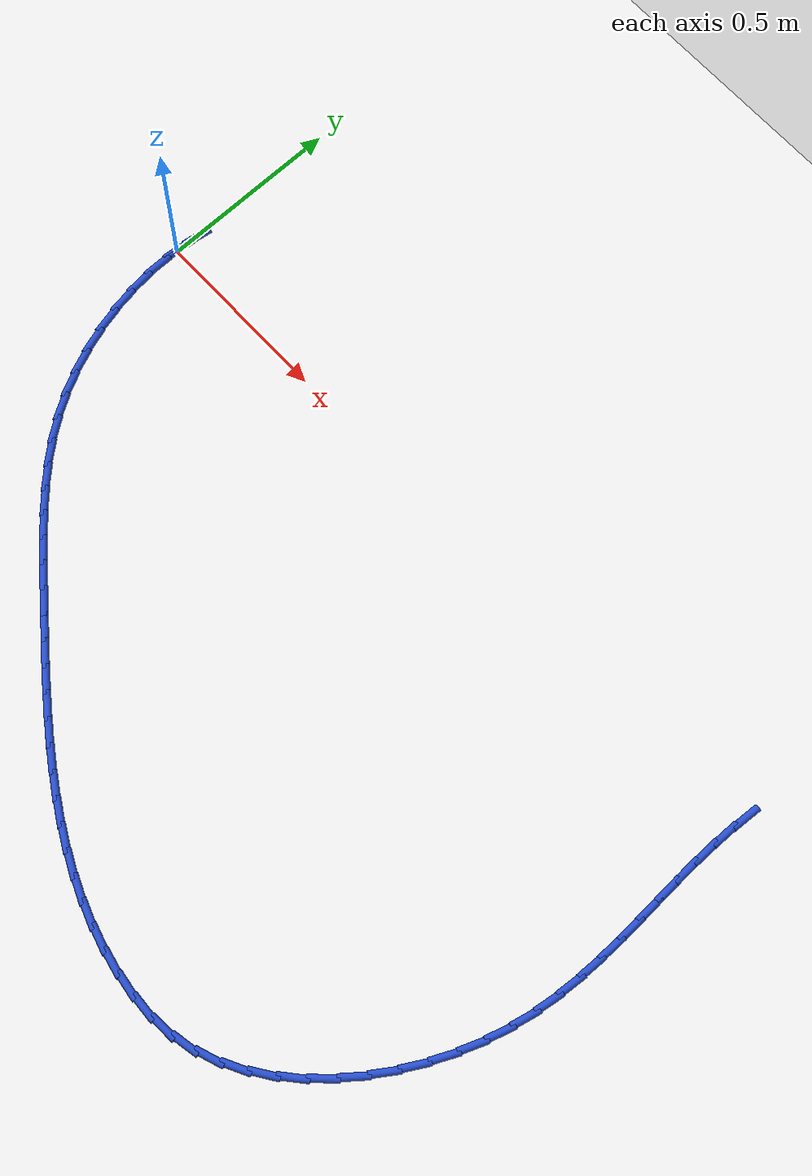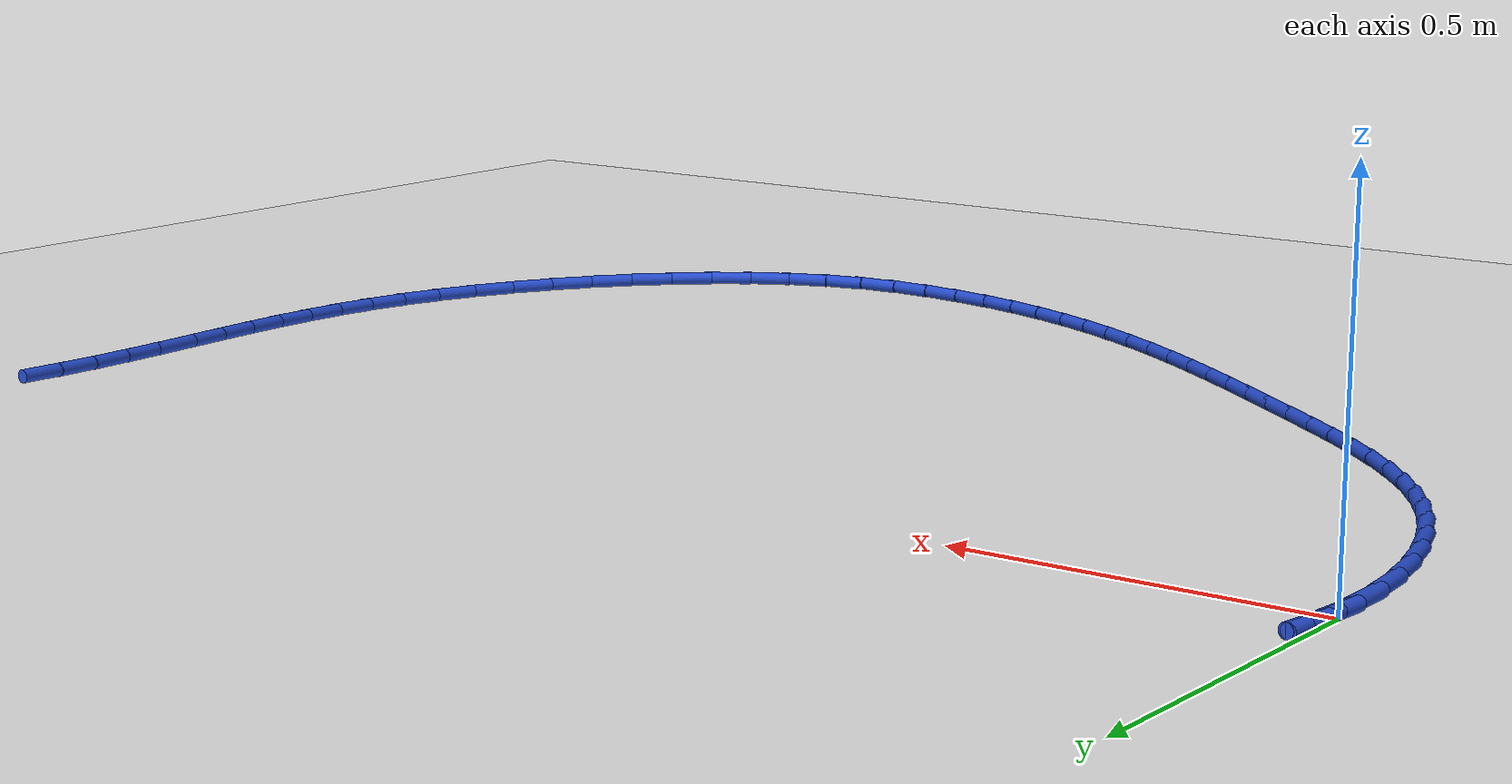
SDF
<sdf version="1.6">
 <world name="default">
  <model name="ground_plane">
   <static>1</static>
   <link name="link">
    <collision name="collision">
     <geometry><plane><normal>0 0 1</normal><size>100 100</size></plane></geometry>
     <surface><friction><ode><mu>100</mu><mu2>50</mu2></ode></friction></surface>
    </collision>
    <visual name="visual">
     <cast_shadows>0</cast_shadows>
     <geometry><plane><normal>0 0 1</normal><size>100 100</size></plane></geometry>
     <material>
      <script><uri>file://media/materials/scripts/gazebo.material</uri><name>Gazebo/WhiteGlow</name></script>
     </material>
    </visual>
   </link>
  </model>
  <model name="line">
   <link name="link_0">
    <pose>1.3877787807814457e-17 1.1102230246251565e-16 0.01 0 1.57 1.4894172450666587</pose>
    <collision name="collision">
     <geometry><cylinder><radius>0.01</radius><length>0.08</length></cylinder></geometry>
    </collision>
    <visual name="visual">
     <material>
      <script><name>Gazebo/Blue</name><uri>file://media/materials/scripts/gazebo.material</uri></script>
     </material>
     <geometry><cylinder><radius>0.01</radius><length>0.08</length></cylinder></geometry>
    </visual>
   </link>
   <link name="link_1">
    <pose>0.005226088684189235 0.06407723938709965 0.01 0 1.57 1.4154049726051852</pose>
    <collision name="collision">
     <geometry><cylinder><radius>0.01</radius><length>0.08</length></cylinder></geometry>
    </collision>
    <visual name="visual">
     <material>
      <script><name>Gazebo/Blue</name><uri>file://media/materials/scripts/gazebo.material</uri></script>
     </material>
     <geometry><cylinder><radius>0.01</radius><length>0.08</length></cylinder></geometry>
    </visual>
   </link>
   <link name="link_63">
    <pose>2.0611183229276806 0.010596258830565718 0.01 0 1.57 1.510732177159918</pose>
    <collision name="collision">
     <geometry><cylinder><radius>0.01</radius><length>0.08</length></cylinder></geometry>
    </collision>
    <visual name="visual">
     <material>
      <script><name>Gazebo/Blue</name><uri>file://media/materials/scripts/gazebo.material</uri></script>
     </material>
     <geometry><cylinder><radius>0.01</radius><length>0.08</length></cylinder></geometry>
    </visual>
   </link>
   <link name="link_64">
    <pose>2.057213794720015 -0.05433151661433647 0.01 0 1.57 1.5573513388400524</pose>
    <collision name="collision">
     <geometry><cylinder><radius>0.01</radius><length>0.08</length></cylinder></geometry>
    </collision>
    <visual name="visual">
     <material>
      <script><name>Gazebo/Blue</name><uri>file://media/materials/scripts/gazebo.material</uri></script>
     </material>
     <geometry><cylinder><radius>0.01</radius><length>0.08</length></cylinder></geometry>
    </visual>
   </link>
   <link name="link_65">
    <pose>2.056342055513163 -0.11916509487532324 0.01 0 1.57 -1.5499838580741052</pose>
    <collision name="collision">
     <geometry><cylinder><radius>0.01</radius><length>0.08</length></cylinder></geometry>
    </collision>
    <visual name="visual">
     <material>
      <script><name>Gazebo/Blue</name><uri>file://media/materials/scripts/gazebo.material</uri></script>
     </material>
     <geometry><cylinder><radius>0.01</radius><length>0.08</length></cylinder></geometry>
    </visual>
   </link>
   <link name="link_66">
    <pose>2.0576905807394983 -0.18394984147380183 0.01 0 1.57 -1.5282747266717374</pose>
    <collision name="collision">
     <geometry><cylinder><radius>0.01</radius><length>0.08</length></cylinder></geometry>
    </collision>
    <visual name="visual">
     <material>
      <script><name>Gazebo/Blue</name><uri>file://media/materials/scripts/gazebo.material</uri></script>
     </material>
     <geometry><cylinder><radius>0.01</radius><length>0.08</length></cylinder></geometry>
    </visual>
   </link>
   <link name="link_67">
    <pose>2.0604468458313923 -0.24873112193117658 0.01 0 1.57 -1.5191404389616527</pose>
    <collision name="collision">
     <geometry><cylinder><radius>0.01</radius><length>0.08</length></cylinder></geometry>
    </collision>
    <visual name="visual">
     <material>
      <script><name>Gazebo/Blue</name><uri>file://media/materials/scripts/gazebo.material</uri></script>
     </material>
     <geometry><cylinder><radius>0.01</radius><length>0.08</length></cylinder></geometry>
    </visual>
   </link>
   <link name="link_68">
    <pose>2.063798326221219 -0.3135543017688544 0.01 0 1.57 -1.5225492554892928</pose>
    <collision name="collision">
     <geometry><cylinder><radius>0.01</radius><length>0.08</length></cylinder></geometry>
    </collision>
    <visual name="visual">
     <material>
      <script><name>Gazebo/Blue</name><uri>file://media/materials/scripts/gazebo.material</uri></script>
     </material>
     <geometry><cylinder><radius>0.01</radius><length>0.08</length></cylinder></geometry>
    </visual>
   </link>
   <link name="link_69">
    <pose>2.0669324973413503 -0.37846474650824163 0.01 0 1.57 -1.5384546282464284</pose>
    <collision name="collision">
     <geometry><cylinder><radius>0.01</radius><length>0.08</length></cylinder></geometry>
    </collision>
    <visual name="visual">
     <material>
      <script><name>Gazebo/Blue</name><uri>file://media/materials/scripts/gazebo.material</uri></script>
     </material>
     <geometry><cylinder><radius>0.01</radius><length>0.08</length></cylinder></geometry>
    </visual>
   </link>
   <link name="link_70">
    <pose>2.0690368346241597 -0.4435078216707451 0.01 0 1.57 -1.5667795655786567</pose>
    <collision name="collision">
     <geometry><cylinder><radius>0.01</radius><length>0.08</length></cylinder></geometry>
    </collision>
    <visual name="visual">
     <material>
      <script><name>Gazebo/Blue</name><uri>file://media/materials/scripts/gazebo.material</uri></script>
     </material>
     <geometry><cylinder><radius>0.01</radius><length>0.08</length></cylinder></geometry>
    </visual>
   </link>
   <link name="link_71">
    <pose>2.0692988135020203 -0.5087288927777696 0.01 0 1.57 1.534248701854381</pose>
    <collision name="collision">
     <geometry><cylinder><radius>0.01</radius><length>0.08</length></cylinder></geometry>
    </collision>
    <visual name="visual">
     <material>
      <script><name>Gazebo/Blue</name><uri>file://media/materials/scripts/gazebo.material</uri></script>
     </material>
     <geometry><cylinder><radius>0.01</radius><length>0.08</length></cylinder></geometry>
    </visual>
   </link>
   <link name="link_72">
    <pose>2.0669059094073035 -0.5741733253507216 0.01 0 1.57 1.4818514411878685</pose>
    <collision name="collision">
     <geometry><cylinder><radius>0.01</radius><length>0.08</length></cylinder></geometry>
    </collision>
    <visual name="visual">
     <material>
      <script><name>Gazebo/Blue</name><uri>file://media/materials/scripts/gazebo.material</uri></script>
     </material>
     <geometry><cylinder><radius>0.01</radius><length>0.08</length></cylinder></geometry>
    </visual>
   </link>
   <link name="link_73">
    <pose>2.0610455977723827 -0.6398864849110077 0.01 0 1.57 1.4184102880921365</pose>
    <collision name="collision">
     <geometry><cylinder><radius>0.01</radius><length>0.08</length></cylinder></geometry>
    </collision>
    <visual name="visual">
     <material>
      <script><name>Gazebo/Blue</name><uri>file://media/materials/scripts/gazebo.material</uri></script>
     </material>
     <geometry><cylinder><radius>0.01</radius><length>0.08</length></cylinder></geometry>
    </visual>
   </link>
   <link name="link_74">
    <pose>2.050905354029631 -0.705913736980035 0.01 0 1.57 1.3452715340786703</pose>
    <collision name="collision">
     <geometry><cylinder><radius>0.01</radius><length>0.08</length></cylinder></geometry>
    </collision>
    <visual name="visual">
     <material>
      <script><name>Gazebo/Blue</name><uri>file://media/materials/scripts/gazebo.material</uri></script>
     </material>
     <geometry><cylinder><radius>0.01</radius><length>0.08</length></cylinder></geometry>
    </visual>
   </link>
   <link name="link_75">
    <pose>2.035674801739883 -0.7722987068869397 0.01 0 1.57 1.2677444069321904</pose>
    <collision name="collision">
     <geometry><cylinder><radius>0.01</radius><length>0.08</length></cylinder></geometry>
    </collision>
    <visual name="visual">
     <material>
      <script><name>Gazebo/Blue</name><uri>file://media/materials/scripts/gazebo.material</uri></script>
     </material>
     <geometry><cylinder><radius>0.01</radius><length>0.08</length></cylinder></geometry>
    </visual>
   </link>
   <link name="link_76">
    <pose>2.0148760524757376 -0.8388156724440556 0.01 0 1.57 1.1927818098586838</pose>
    <collision name="collision">
     <geometry><cylinder><radius>0.01</radius><length>0.08</length></cylinder></geometry>
    </collision>
    <visual name="visual">
     <material>
      <script><name>Gazebo/Blue</name><uri>file://media/materials/scripts/gazebo.material</uri></script>
     </material>
     <geometry><cylinder><radius>0.01</radius><length>0.08</length></cylinder></geometry>
    </visual>
   </link>
   <link name="link_77">
    <pose>1.988720216946056 -0.9046807553802823 0.01 0 1.57 1.1191998047873954</pose>
    <collision name="collision">
     <geometry><cylinder><radius>0.01</radius><length>0.08</length></cylinder></geometry>
    </collision>
    <visual name="visual">
     <material>
      <script><name>Gazebo/Blue</name><uri>file://media/materials/scripts/gazebo.material</uri></script>
     </material>
     <geometry><cylinder><radius>0.01</radius><length>0.08</length></cylinder></geometry>
    </visual>
   </link>
   <link name="link_78">
    <pose>1.9575039586977334 -0.969040771333279 0.01 0 1.57 1.0449833319957134</pose>
    <collision name="collision">
     <geometry><cylinder><radius>0.01</radius><length>0.08</length></cylinder></geometry>
    </collision>
    <visual name="visual">
     <material>
      <script><name>Gazebo/Blue</name><uri>file://media/materials/scripts/gazebo.material</uri></script>
     </material>
     <geometry><cylinder><radius>0.01</radius><length>0.08</length></cylinder></geometry>
    </visual>
   </link>
   <link name="link_79">
    <pose>1.9215239412776646 -1.031042535940703 0.01 0 1.57 0.968176848061702</pose>
    <collision name="collision">
     <geometry><cylinder><radius>0.01</radius><length>0.08</length></cylinder></geometry>
    </collision>
    <visual name="visual">
     <material>
      <script><name>Gazebo/Blue</name><uri>file://media/materials/scripts/gazebo.material</uri></script>
     </material>
     <geometry><cylinder><radius>0.01</radius><length>0.08</length></cylinder></geometry>
    </visual>
   </link>
   <link name="link_80">
    <pose>1.881076828232743 -1.089832864840212 0.01 0 1.57 0.886799063885381</pose>
    <collision name="collision">
     <geometry><cylinder><radius>0.01</radius><length>0.08</length></cylinder></geometry>
    </collision>
    <visual name="visual">
     <material>
      <script><name>Gazebo/Blue</name><uri>file://media/materials/scripts/gazebo.material</uri></script>
     </material>
     <geometry><cylinder><radius>0.01</radius><length>0.08</length></cylinder></geometry>
    </visual>
   </link>
   <link name="link_81">
    <pose>1.8364592831098636 -1.1445585736694672 0.01 0 1.57 0.7987910677253918</pose>
    <collision name="collision">
     <geometry><cylinder><radius>0.01</radius><length>0.08</length></cylinder></geometry>
    </collision>
    <visual name="visual">
     <material>
      <script><name>Gazebo/Blue</name><uri>file://media/materials/scripts/gazebo.material</uri></script>
     </material>
     <geometry><cylinder><radius>0.01</radius><length>0.08</length></cylinder></geometry>
    </visual>
   </link>
   <link name="link_82">
    <pose>1.787967969455922 -1.194366478066124 0.01 0 1.57 0.702022105671315</pose>
    <collision name="collision">
     <geometry><cylinder><radius>0.01</radius><length>0.08</length></cylinder></geometry>
    </collision>
    <visual name="visual">
     <material>
      <script><name>Gazebo/Blue</name><uri>file://media/materials/scripts/gazebo.material</uri></script>
     </material>
     <geometry><cylinder><radius>0.01</radius><length>0.08</length></cylinder></geometry>
    </visual>
   </link>
   <link name="link_83">
    <pose>1.7358995508178119 -1.2384033936678422 0.01 0 1.57 0.5943980574104595</pose>
    <collision name="collision">
     <geometry><cylinder><radius>0.01</radius><length>0.08</length></cylinder></geometry>
    </collision>
    <visual name="visual">
     <material>
      <script><name>Gazebo/Blue</name><uri>file://media/materials/scripts/gazebo.material</uri></script>
     </material>
     <geometry><cylinder><radius>0.01</radius><length>0.08</length></cylinder></geometry>
    </visual>
   </link>
   <link name="link_84">
    <pose>1.6805506907424281 -1.2758161361122806 0.01 0 1.57 0.4741392086875676</pose>
    <collision name="collision">
     <geometry><cylinder><radius>0.01</radius><length>0.08</length></cylinder></geometry>
    </collision>
    <visual name="visual">
     <material>
      <script><name>Gazebo/Blue</name><uri>file://media/materials/scripts/gazebo.material</uri></script>
     </material>
     <geometry><cylinder><radius>0.01</radius><length>0.08</length></cylinder></geometry>
    </visual>
   </link>
   <link name="link_85">
    <pose>1.6222180527766648 -1.3057515210370978 0.01 0 1.57 0.3402899174059222</pose>
    <collision name="collision">
     <geometry><cylinder><radius>0.01</radius><length>0.08</length></cylinder></geometry>
    </collision>
    <visual name="visual">
     <material>
      <script><name>Gazebo/Blue</name><uri>file://media/materials/scripts/gazebo.material</uri></script>
     </material>
     <geometry><cylinder><radius>0.01</radius><length>0.08</length></cylinder></geometry>
    </visual>
   </link>
   <link name="link_86">
    <pose>1.5611983004674173 -1.3273563640799506 0.01 0 1.57 0.19347501259979646</pose>
    <collision name="collision">
     <geometry><cylinder><radius>0.01</radius><length>0.08</length></cylinder></geometry>
    </collision>
    <visual name="visual">
     <material>
      <script><name>Gazebo/Blue</name><uri>file://media/materials/scripts/gazebo.material</uri></script>
     </material>
     <geometry><cylinder><radius>0.01</radius><length>0.08</length></cylinder></geometry>
    </visual>
   </link>
   <link name="link_87">
    <pose>1.4977890633384783 -1.3397798698835486 0.01 0 1.57 0.04866308891969872</pose>
    <collision name="collision">
     <geometry><cylinder><radius>0.01</radius><length>0.08</length></cylinder></geometry>
    </collision>
    <visual name="visual">
     <material>
      <script><name>Gazebo/Blue</name><uri>file://media/materials/scripts/gazebo.material</uri></script>
     </material>
     <geometry><cylinder><radius>0.01</radius><length>0.08</length></cylinder></geometry>
    </visual>
   </link>
   <link name="link_88">
    <pose>1.4326046552930392 -1.3429544508285278 0.01 0 1.57 -0.06447580212943903</pose>
    <collision name="collision">
     <geometry><cylinder><radius>0.01</radius><length>0.08</length></cylinder></geometry>
    </collision>
    <visual name="visual">
     <material>
      <script><name>Gazebo/Blue</name><uri>file://media/materials/scripts/gazebo.material</uri></script>
     </material>
     <geometry><cylinder><radius>0.01</radius><length>0.08</length></cylinder></geometry>
    </visual>
   </link>
   <link name="link_89">
    <pose>1.3670309348040082 -1.3387206641756293 0.01 0 1.57 -0.14838583346664705</pose>
    <collision name="collision">
     <geometry><cylinder><radius>0.01</radius><length>0.08</length></cylinder></geometry>
    </collision>
    <visual name="visual">
     <material>
      <script><name>Gazebo/Blue</name><uri>file://media/materials/scripts/gazebo.material</uri></script>
     </material>
     <geometry><cylinder><radius>0.01</radius><length>0.08</length></cylinder></geometry>
    </visual>
   </link>
   <link name="link_90">
    <pose>1.3024469746672878 -1.329066357876499 0.01 0 1.57 -0.2209644539220299</pose>
    <collision name="collision">
     <geometry><cylinder><radius>0.01</radius><length>0.08</length></cylinder></geometry>
    </collision>
    <visual name="visual">
     <material>
      <script><name>Gazebo/Blue</name><uri>file://media/materials/scripts/gazebo.material</uri></script>
     </material>
     <geometry><cylinder><radius>0.01</radius><length>0.08</length></cylinder></geometry>
    </visual>
   </link>
   <link name="link_91">
    <pose>1.2392492384876674 -1.3148701036312822 0.01 0 1.57 -0.28890572697135414</pose>
    <collision name="collision">
     <geometry><cylinder><radius>0.01</radius><length>0.08</length></cylinder></geometry>
    </collision>
    <visual name="visual">
     <material>
      <script><name>Gazebo/Blue</name><uri>file://media/materials/scripts/gazebo.material</uri></script>
     </material>
     <geometry><cylinder><radius>0.01</radius><length>0.08</length></cylinder></geometry>
    </visual>
   </link>
   <link name="link_92">
    <pose>1.1773601659558433 -1.2964753433293068 0.01 0 1.57 -0.35160318488927345</pose>
    <collision name="collision">
     <geometry><cylinder><radius>0.01</radius><length>0.08</length></cylinder></geometry>
    </collision>
    <visual name="visual">
     <material>
      <script><name>Gazebo/Blue</name><uri>file://media/materials/scripts/gazebo.material</uri></script>
     </material>
     <geometry><cylinder><radius>0.01</radius><length>0.08</length></cylinder></geometry>
    </visual>
   </link>
   <link name="link_93">
    <pose>1.116699138087172 -1.2742220658941181 0.01 0 1.57 -0.408661342968554</pose>
    <collision name="collision">
     <geometry><cylinder><radius>0.01</radius><length>0.08</length></cylinder></geometry>
    </collision>
    <visual name="visual">
     <material>
      <script><name>Gazebo/Blue</name><uri>file://media/materials/scripts/gazebo.material</uri></script>
     </material>
     <geometry><cylinder><radius>0.01</radius><length>0.08</length></cylinder></geometry>
    </visual>
   </link>
   <link name="link_94">
    <pose>1.0571855358970141 -1.2484502602492633 0.01 0 1.57 -0.45990317438582645</pose>
    <collision name="collision">
     <geometry><cylinder><radius>0.01</radius><length>0.08</length></cylinder></geometry>
    </collision>
    <visual name="visual">
     <material>
      <script><name>Gazebo/Blue</name><uri>file://media/materials/scripts/gazebo.material</uri></script>
     </material>
     <geometry><cylinder><radius>0.01</radius><length>0.08</length></cylinder></geometry>
    </visual>
   </link>
   <link name="link_95">
    <pose>0.9987387404007264 -1.219499915318288 0.01 0 1.57 -0.5053191848950599</pose>
    <collision name="collision">
     <geometry><cylinder><radius>0.01</radius><length>0.08</length></cylinder></geometry>
    </collision>
    <visual name="visual">
     <material>
      <script><name>Gazebo/Blue</name><uri>file://media/materials/scripts/gazebo.material</uri></script>
     </material>
     <geometry><cylinder><radius>0.01</radius><length>0.08</length></cylinder></geometry>
    </visual>
   </link>
   <link name="link_96">
    <pose>0.9412781326136663 -1.1877110200247378 0.01 0 1.57 -0.5450148876480625</pose>
    <collision name="collision">
     <geometry><cylinder><radius>0.01</radius><length>0.08</length></cylinder></geometry>
    </collision>
    <visual name="visual">
     <material>
      <script><name>Gazebo/Blue</name><uri>file://media/materials/scripts/gazebo.material</uri></script>
     </material>
     <geometry><cylinder><radius>0.01</radius><length>0.08</length></cylinder></geometry>
    </visual>
   </link>
   <link name="link_97">
    <pose>0.8847230935511937 -1.1534235632921603 0.01 0 1.57 -0.5791638203280529</pose>
    <collision name="collision">
     <geometry><cylinder><radius>0.01</radius><length>0.08</length></cylinder></geometry>
    </collision>
    <visual name="visual">
     <material>
      <script><name>Gazebo/Blue</name><uri>file://media/materials/scripts/gazebo.material</uri></script>
     </material>
     <geometry><cylinder><radius>0.01</radius><length>0.08</length></cylinder></geometry>
    </visual>
   </link>
   <link name="link_98">
    <pose>0.8289930042286658 -1.1169775340441006 0.01 0 1.57 -0.6079692704468903</pose>
    <collision name="collision">
     <geometry><cylinder><radius>0.01</radius><length>0.08</length></cylinder></geometry>
    </collision>
    <visual name="visual">
     <material>
      <script><name>Gazebo/Blue</name><uri>file://media/materials/scripts/gazebo.material</uri></script>
     </material>
     <geometry><cylinder><radius>0.01</radius><length>0.08</length></cylinder></geometry>
    </visual>
   </link>
   <link name="link_99">
    <pose>0.7740072456614411 -1.0787129212041058 0.01 0 1.57 -0.6316351010607255</pose>
    <collision name="collision">
     <geometry><cylinder><radius>0.01</radius><length>0.08</length></cylinder></geometry>
    </collision>
    <visual name="visual">
     <material>
      <script><name>Gazebo/Blue</name><uri>file://media/materials/scripts/gazebo.material</uri></script>
     </material>
     <geometry><cylinder><radius>0.01</radius><length>0.08</length></cylinder></geometry>
    </visual>
   </link>
   <link name="link_100">
    <pose>0.7196851988648763 -1.0389697136957203 0.01 0 1.57 -0.6503445516838796</pose>
    <collision name="collision">
     <geometry><cylinder><radius>0.01</radius><length>0.08</length></cylinder></geometry>
    </collision>
    <visual name="visual">
     <material>
      <script><name>Gazebo/Blue</name><uri>file://media/materials/scripts/gazebo.material</uri></script>
     </material>
     <geometry><cylinder><radius>0.01</radius><length>0.08</length></cylinder></geometry>
    </visual>
   </link>
   <link name="link_101">
    <pose>0.6659462448543315 -0.9980879004424926 0.01 0 1.57 -0.6642453072918326</pose>
    <collision name="collision">
     <geometry><cylinder><radius>0.01</radius><length>0.08</length></cylinder></geometry>
    </collision>
    <visual name="visual">
     <material>
      <script><name>Gazebo/Blue</name><uri>file://media/materials/scripts/gazebo.material</uri></script>
     </material>
     <geometry><cylinder><radius>0.01</radius><length>0.08</length></cylinder></geometry>
    </visual>
   </link>
   <link name="link_102">
    <pose>0.6127097646451639 -0.9564074703679675 0.01 0 1.57 -0.6734391087287714</pose>
    <collision name="collision">
     <geometry><cylinder><radius>0.01</radius><length>0.08</length></cylinder></geometry>
    </collision>
    <visual name="visual">
     <material>
      <script><name>Gazebo/Blue</name><uri>file://media/materials/scripts/gazebo.material</uri></script>
     </material>
     <geometry><cylinder><radius>0.01</radius><length>0.08</length></cylinder></geometry>
    </visual>
   </link>
   <link name="link_103">
    <pose>0.5598951392527317 -0.9142684123956917 0.01 0 1.57 -0.6779744353887536</pose>
    <collision name="collision">
     <geometry><cylinder><radius>0.01</radius><length>0.08</length></cylinder></geometry>
    </collision>
    <visual name="visual">
     <material>
      <script><name>Gazebo/Blue</name><uri>file://media/materials/scripts/gazebo.material</uri></script>
     </material>
     <geometry><cylinder><radius>0.01</radius><length>0.08</length></cylinder></geometry>
    </visual>
   </link>
   <link name="link_104">
    <pose>0.5074217496923925 -0.8720107154492103 0.01 0 1.57 -0.679411374846248</pose>
    <collision name="collision">
     <geometry><cylinder><radius>0.01</radius><length>0.08</length></cylinder></geometry>
    </collision>
    <visual name="visual">
     <material>
      <script><name>Gazebo/Blue</name><uri>file://media/materials/scripts/gazebo.material</uri></script>
     </material>
     <geometry><cylinder><radius>0.01</radius><length>0.08</length></cylinder></geometry>
    </visual>
   </link>
   <link name="link_105">
    <pose>0.45526916037762327 -0.8298876796871814 0.01 0 1.57 -0.6874356373527679</pose>
    <collision name="collision">
     <geometry><cylinder><radius>0.01</radius><length>0.08</length></cylinder></geometry>
    </collision>
    <visual name="visual">
     <material>
      <script><name>Gazebo/Blue</name><uri>file://media/materials/scripts/gazebo.material</uri></script>
     </material>
     <geometry><cylinder><radius>0.01</radius><length>0.08</length></cylinder></geometry>
    </visual>
   </link>
   <link name="link_106">
    <pose>0.4037872156932626 -0.7876192503168138 0.01 0 1.57 -0.7059221634823402</pose>
    <collision name="collision">
     <geometry><cylinder><radius>0.01</radius><length>0.08</length></cylinder></geometry>
    </collision>
    <visual name="visual">
     <material>
      <script><name>Gazebo/Blue</name><uri>file://media/materials/scripts/gazebo.material</uri></script>
     </material>
     <geometry><cylinder><radius>0.01</radius><length>0.08</length></cylinder></geometry>
    </visual>
   </link>
   <link name="link_107">
    <pose>0.3534664746212976 -0.7447226858408406 0.01 0 1.57 -0.7351486603660393</pose>
    <collision name="collision">
     <geometry><cylinder><radius>0.01</radius><length>0.08</length></cylinder></geometry>
    </collision>
    <visual name="visual">
     <material>
      <script><name>Gazebo/Blue</name><uri>file://media/materials/scripts/gazebo.material</uri></script>
     </material>
     <geometry><cylinder><radius>0.01</radius><length>0.08</length></cylinder></geometry>
    </visual>
   </link>
   <link name="link_108">
    <pose>0.30479776813572795 -0.700714852981994 0.01 0 1.57 -0.775373255560302</pose>
    <collision name="collision">
     <geometry><cylinder><radius>0.01</radius><length>0.08</length></cylinder></geometry>
    </collision>
    <visual name="visual">
     <material>
      <script><name>Gazebo/Blue</name><uri>file://media/materials/scripts/gazebo.material</uri></script>
     </material>
     <geometry><cylinder><radius>0.01</radius><length>0.08</length></cylinder></geometry>
    </visual>
   </link>
   <link name="link_109">
    <pose>0.2582719272105555 -0.6551126184630083 0.01 0 1.57 -0.826736900509905</pose>
    <collision name="collision">
     <geometry><cylinder><radius>0.01</radius><length>0.08</length></cylinder></geometry>
    </collision>
    <visual name="visual">
     <material>
      <script><name>Gazebo/Blue</name><uri>file://media/materials/scripts/gazebo.material</uri></script>
     </material>
     <geometry><cylinder><radius>0.01</radius><length>0.08</length></cylinder></geometry>
    </visual>
   </link>
   <link name="link_110">
    <pose>0.21437978281977974 -0.6074328490066155 0.01 0 1.57 -0.8891124027724427</pose>
    <collision name="collision">
     <geometry><cylinder><radius>0.01</radius><length>0.08</length></cylinder></geometry>
    </collision>
    <visual name="visual">
     <material>
      <script><name>Gazebo/Blue</name><uri>file://media/materials/scripts/gazebo.material</uri></script>
     </material>
     <geometry><cylinder><radius>0.01</radius><length>0.08</length></cylinder></geometry>
    </visual>
   </link>
   <link name="link_111">
    <pose>0.1736121659374013 -0.5571924113355488 0.01 0 1.57 -0.9619206251047905</pose>
    <collision name="collision">
     <geometry><cylinder><radius>0.01</radius><length>0.08</length></cylinder></geometry>
    </collision>
    <visual name="visual">
     <material>
      <script><name>Gazebo/Blue</name><uri>file://media/materials/scripts/gazebo.material</uri></script>
     </material>
     <geometry><cylinder><radius>0.01</radius><length>0.08</length></cylinder></geometry>
    </visual>
   </link>
   <link name="link_112">
    <pose>0.13645990753742018 -0.5039081721725401 0.01 0 1.57 -1.0422465171322146</pose>
    <collision name="collision">
     <geometry><cylinder><radius>0.01</radius><length>0.08</length></cylinder></geometry>
    </collision>
    <visual name="visual">
     <material>
      <script><name>Gazebo/Blue</name><uri>file://media/materials/scripts/gazebo.material</uri></script>
     </material>
     <geometry><cylinder><radius>0.01</radius><length>0.08</length></cylinder></geometry>
    </visual>
   </link>
   <link name="link_113">
    <pose>0.10336832198074462 -0.44724164808383676 0.01 0 1.57 -1.1209785912618722</pose>
    <collision name="collision">
     <geometry><cylinder><radius>0.01</radius><length>0.08</length></cylinder></geometry>
    </collision>
    <visual name="visual">
     <material>
      <script><name>Gazebo/Blue</name><uri>file://media/materials/scripts/gazebo.material</uri></script>
     </material>
     <geometry><cylinder><radius>0.01</radius><length>0.08</length></cylinder></geometry>
    </visual>
   </link>
   <link name="link_114">
    <pose>0.07455733991382812 -0.3875706154100924 0.01 0 1.57 -1.1965618278400247</pose>
    <collision name="collision">
     <geometry><cylinder><radius>0.01</radius><length>0.08</length></cylinder></geometry>
    </collision>
    <visual name="visual">
     <material>
      <script><name>Gazebo/Blue</name><uri>file://media/materials/scripts/gazebo.material</uri></script>
     </material>
     <geometry><cylinder><radius>0.01</radius><length>0.08</length></cylinder></geometry>
    </visual>
   </link>
   <link name="link_115">
    <pose>0.05017725755740579 -0.32549414570921864 0.01 0 1.57 -1.2702585262958581</pose>
    <collision name="collision">
     <geometry><cylinder><radius>0.01</radius><length>0.08</length></cylinder></geometry>
    </collision>
    <visual name="visual">
     <material>
      <script><name>Gazebo/Blue</name><uri>file://media/materials/scripts/gazebo.material</uri></script>
     </material>
     <geometry><cylinder><radius>0.01</radius><length>0.08</length></cylinder></geometry>
    </visual>
   </link>
   <link name="link_116">
    <pose>0.030378350870543677 -0.26161137492984804 0.01 0 1.57 -1.3433163845914906</pose>
    <collision name="collision">
     <geometry><cylinder><radius>0.01</radius><length>0.08</length></cylinder></geometry>
    </collision>
    <visual name="visual">
     <material>
      <script><name>Gazebo/Blue</name><uri>file://media/materials/scripts/gazebo.material</uri></script>
     </material>
     <geometry><cylinder><radius>0.01</radius><length>0.08</length></cylinder></geometry>
    </visual>
   </link>
   <link name="link_117">
    <pose>0.015310895812306685 -0.19652143902061023 0.01 0 1.57 -1.4169822293469785</pose>
    <collision name="collision">
     <geometry><cylinder><radius>0.01</radius><length>0.08</length></cylinder></geometry>
    </collision>
    <visual name="visual">
     <material>
      <script><name>Gazebo/Blue</name><uri>file://media/materials/scripts/gazebo.material</uri></script>
     </material>
     <geometry><cylinder><radius>0.01</radius><length>0.08</length></cylinder></geometry>
    </visual>
   </link>
   <link name="link_118">
    <pose>0.005125168341760187 -0.13082347393013596 0.01 0 1.57 -1.4925214828148752</pose>
    <collision name="collision">
     <geometry><cylinder><radius>0.01</radius><length>0.08</length></cylinder></geometry>
    </collision>
    <visual name="visual">
     <material>
      <script><name>Gazebo/Blue</name><uri>file://media/materials/scripts/gazebo.material</uri></script>
     </material>
     <geometry><cylinder><radius>0.01</radius><length>0.08</length></cylinder></geometry>
    </visual>
   </link>
   <link name="link_119">
    <pose>-2.8555582030527493e-05 -0.06511661560705498 0.01 0 1.57 1.5703577969368283</pose>
    <collision name="collision">
     <geometry><cylinder><radius>0.01</radius><length>0.08</length></cylinder></geometry>
    </collision>
    <visual name="visual">
     <material>
      <script><name>Gazebo/Blue</name><uri>file://media/materials/scripts/gazebo.material</uri></script>
     </material>
     <geometry><cylinder><radius>0.01</radius><length>0.08</length></cylinder></geometry>
    </visual>
   </link>
   <link name="link_120">
    <pose>2.0816681711721685e-17 2.3592239273284576e-16 0.01 0 1.57 1.4871293966338732</pose>
    <collision name="collision">
     <geometry><cylinder><radius>0.01</radius><length>0.08</length></cylinder></geometry>
    </collision>
    <visual name="visual">
     <material>
      <script><name>Gazebo/Blue</name><uri>file://media/materials/scripts/gazebo.material</uri></script>
     </material>
     <geometry><cylinder><radius>0.01</radius><length>0.08</length></cylinder></geometry>
    </visual>
   </link>
   <link name="link_121">
    <pose>0.005361111046917055 0.0639272369423999 0.01 0 1.57 1.4871293966338732</pose>
    <collision name="collision">
     <geometry><cylinder><radius>0.01</radius><length>0.08</length></cylinder></geometry>
    </collision>
    <visual name="visual">
     <material>
      <script><name>Gazebo/Blue</name><uri>file://media/materials/scripts/gazebo.material</uri></script>
     </material>
     <geometry><cylinder><radius>0.01</radius><length>0.08</length></cylinder></geometry>
    </visual>
   </link>
  </model>
 </world>
</sdf>
